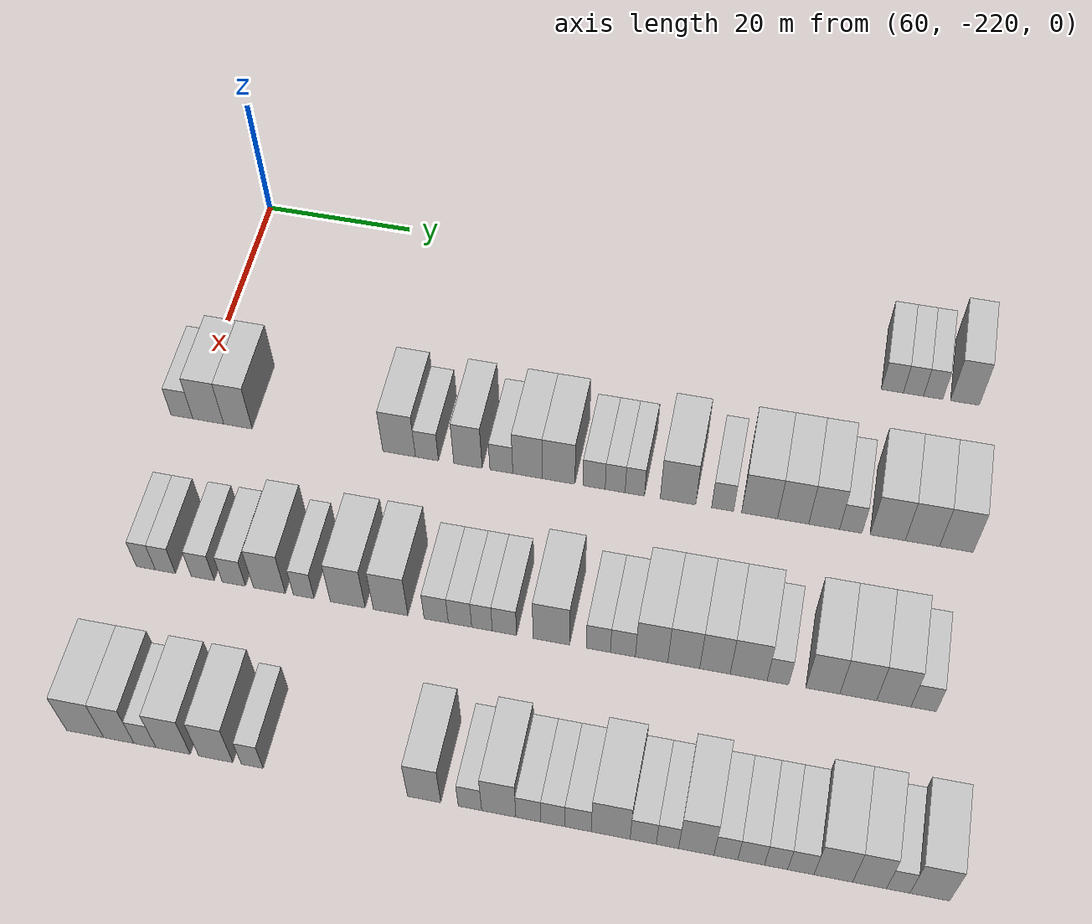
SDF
<sdf version="1.6">
 <world name="default">
  <model name="building_425">
   <static>1</static>
   <pose>69.0000 -131.8547 0 0.000000 0.000000 0.000000</pose>
   <link name="link">
    <pose>0 0 3.00 0 0 0</pose>
    <collision name="collision"><geometry><box><size>10.0000 2.8605 6.0000</size></box></geometry></collision>
    <visual name="visual">
     <cast_shadows>0</cast_shadows>
     <geometry><box><size>10.0000 2.8605 6.0000</size></box></geometry>
     <material>
      <script>
       <uri>model://HANNAS_wall/materials/scripts</uri>
       <uri>model://HANNAS_wall/materials/textures</uri>
       <name>vrc/HANNAS_wall</name>
      </script>
     </material>
    </visual>
   </link>
  </model>
  <model name="building_426">
   <static>1</static>
   <pose>69.0000 -129.1215 0 0.000000 0.000000 0.000000</pose>
   <link name="link">
    <pose>0 0 3.00 0 0 0</pose>
    <collision name="collision"><geometry><box><size>10.0000 2.6061 6.0000</size></box></geometry></collision>
    <visual name="visual">
     <cast_shadows>0</cast_shadows>
     <geometry><box><size>10.0000 2.6061 6.0000</size></box></geometry>
     <material>
      <script>
       <uri>model://HANNAS_wall/materials/scripts</uri>
       <uri>model://HANNAS_wall/materials/textures</uri>
       <name>vrc/HANNAS_wall</name>
      </script>
     </material>
    </visual>
   </link>
  </model>
  <model name="building_427">
   <static>1</static>
   <pose>69.0000 -126.5702 0 0.000000 0.000000 0.000000</pose>
   <link name="link">
    <pose>0 0 3.00 0 0 0</pose>
    <collision name="collision"><geometry><box><size>10.0000 2.4964 6.0000</size></box></geometry></collision>
    <visual name="visual">
     <cast_shadows>0</cast_shadows>
     <geometry><box><size>10.0000 2.4964 6.0000</size></box></geometry>
     <material>
      <script>
       <uri>model://HANNAS_wall/materials/scripts</uri>
       <uri>model://HANNAS_wall/materials/textures</uri>
       <name>vrc/HANNAS_wall</name>
      </script>
     </material>
    </visual>
   </link>
  </model>
  <model name="building_428">
   <static>1</static>
   <pose>69.0000 -122.4739 0 0.000000 0.000000 0.000000</pose>
   <link name="link">
    <pose>0 0 4.50 0 0 0</pose>
    <collision name="collision"><geometry><box><size>10.0000 3.6962 9.0000</size></box></geometry></collision>
    <visual name="visual">
     <cast_shadows>0</cast_shadows>
     <geometry><box><size>10.0000 3.6962 9.0000</size></box></geometry>
     <material>
      <script>
       <uri>model://HANNAS_wall/materials/scripts</uri>
       <uri>model://HANNAS_wall/materials/textures</uri>
       <name>vrc/HANNAS_wall</name>
      </script>
     </material>
    </visual>
   </link>
  </model>
  <model name="building_575">
   <static>1</static>
   <pose>91.0000 -221.1207 0 0.000000 0.000000 0.000000</pose>
   <link name="link">
    <pose>0 0 3.00 0 0 0</pose>
    <collision name="collision"><geometry><box><size>10.0000 2.9358 6.0000</size></box></geometry></collision>
    <visual name="visual">
     <cast_shadows>0</cast_shadows>
     <geometry><box><size>10.0000 2.9358 6.0000</size></box></geometry>
     <material>
      <script>
       <uri>model://HANNAS_wall/materials/scripts</uri>
       <uri>model://HANNAS_wall/materials/textures</uri>
       <name>vrc/HANNAS_wall</name>
      </script>
     </material>
    </visual>
   </link>
  </model>
  <model name="building_576">
   <static>1</static>
   <pose>91.0000 -217.5856 0 0.000000 0.000000 0.000000</pose>
   <link name="link">
    <pose>0 0 4.50 0 0 0</pose>
    <collision name="collision"><geometry><box><size>10.0000 4.1344 9.0000</size></box></geometry></collision>
    <visual name="visual">
     <cast_shadows>0</cast_shadows>
     <geometry><box><size>10.0000 4.1344 9.0000</size></box></geometry>
     <material>
      <script>
       <uri>model://HANNAS_wall/materials/scripts</uri>
       <uri>model://HANNAS_wall/materials/textures</uri>
       <name>vrc/HANNAS_wall</name>
      </script>
     </material>
    </visual>
   </link>
  </model>
  <model name="building_577">
   <static>1</static>
   <pose>91.0000 -213.6196 0 0.000000 0.000000 0.000000</pose>
   <link name="link">
    <pose>0 0 4.50 0 0 0</pose>
    <collision name="collision"><geometry><box><size>10.0000 3.7977 9.0000</size></box></geometry></collision>
    <visual name="visual">
     <cast_shadows>0</cast_shadows>
     <geometry><box><size>10.0000 3.7977 9.0000</size></box></geometry>
     <material>
      <script>
       <uri>model://HANNAS_wall/materials/scripts</uri>
       <uri>model://HANNAS_wall/materials/textures</uri>
       <name>vrc/HANNAS_wall</name>
      </script>
     </material>
    </visual>
   </link>
  </model>
  <model name="building_578">
   <static>1</static>
   <pose>91.0000 -192.3219 0 0.000000 0.000000 0.000000</pose>
   <link name="link">
    <pose>0 0 4.50 0 0 0</pose>
    <collision name="collision"><geometry><box><size>10.0000 4.2659 9.0000</size></box></geometry></collision>
    <visual name="visual">
     <cast_shadows>0</cast_shadows>
     <geometry><box><size>10.0000 4.2659 9.0000</size></box></geometry>
     <material>
      <script>
       <uri>model://HANNAS_wall/materials/scripts</uri>
       <uri>model://HANNAS_wall/materials/textures</uri>
       <name>vrc/HANNAS_wall</name>
      </script>
     </material>
    </visual>
   </link>
  </model>
  <model name="building_579">
   <static>1</static>
   <pose>91.0000 -188.6938 0 0.000000 0.000000 0.000000</pose>
   <link name="link">
    <pose>0 0 3.00 0 0 0</pose>
    <collision name="collision"><geometry><box><size>10.0000 2.9902 6.0000</size></box></geometry></collision>
    <visual name="visual">
     <cast_shadows>0</cast_shadows>
     <geometry><box><size>10.0000 2.9902 6.0000</size></box></geometry>
     <material>
      <script>
       <uri>model://HANNAS_wall/materials/scripts</uri>
       <uri>model://HANNAS_wall/materials/textures</uri>
       <name>vrc/HANNAS_wall</name>
      </script>
     </material>
    </visual>
   </link>
  </model>
  <model name="building_580">
   <static>1</static>
   <pose>91.0000 -183.3639 0 0.000000 0.000000 0.000000</pose>
   <link name="link">
    <pose>0 0 4.50 0 0 0</pose>
    <collision name="collision"><geometry><box><size>10.0000 3.6697 9.0000</size></box></geometry></collision>
    <visual name="visual">
     <cast_shadows>0</cast_shadows>
     <geometry><box><size>10.0000 3.6697 9.0000</size></box></geometry>
     <material>
      <script>
       <uri>model://HANNAS_wall/materials/scripts</uri>
       <uri>model://HANNAS_wall/materials/textures</uri>
       <name>vrc/HANNAS_wall</name>
      </script>
     </material>
    </visual>
   </link>
  </model>
  <model name="building_581">
   <static>1</static>
   <pose>91.0000 -179.0509 0 0.000000 0.000000 0.000000</pose>
   <link name="link">
    <pose>0 0 3.00 0 0 0</pose>
    <collision name="collision"><geometry><box><size>10.0000 2.9563 6.0000</size></box></geometry></collision>
    <visual name="visual">
     <cast_shadows>0</cast_shadows>
     <geometry><box><size>10.0000 2.9563 6.0000</size></box></geometry>
     <material>
      <script>
       <uri>model://HANNAS_wall/materials/scripts</uri>
       <uri>model://HANNAS_wall/materials/textures</uri>
       <name>vrc/HANNAS_wall</name>
      </script>
     </material>
    </visual>
   </link>
  </model>
  <model name="building_582">
   <static>1</static>
   <pose>91.0000 -175.6650 0 0.000000 0.000000 0.000000</pose>
   <link name="link">
    <pose>0 0 4.50 0 0 0</pose>
    <collision name="collision"><geometry><box><size>10.0000 3.8155 9.0000</size></box></geometry></collision>
    <visual name="visual">
     <cast_shadows>0</cast_shadows>
     <geometry><box><size>10.0000 3.8155 9.0000</size></box></geometry>
     <material>
      <script>
       <uri>model://HANNAS_wall/materials/scripts</uri>
       <uri>model://HANNAS_wall/materials/textures</uri>
       <name>vrc/HANNAS_wall</name>
      </script>
     </material>
    </visual>
   </link>
  </model>
  <model name="building_583">
   <static>1</static>
   <pose>91.0000 -171.6779 0 0.000000 0.000000 0.000000</pose>
   <link name="link">
    <pose>0 0 4.50 0 0 0</pose>
    <collision name="collision"><geometry><box><size>10.0000 4.1586 9.0000</size></box></geometry></collision>
    <visual name="visual">
     <cast_shadows>0</cast_shadows>
     <geometry><box><size>10.0000 4.1586 9.0000</size></box></geometry>
     <material>
      <script>
       <uri>model://HANNAS_wall/materials/scripts</uri>
       <uri>model://HANNAS_wall/materials/textures</uri>
       <name>vrc/HANNAS_wall</name>
      </script>
     </material>
    </visual>
   </link>
  </model>
  <model name="building_584">
   <static>1</static>
   <pose>91.0000 -167.1726 0 0.000000 0.000000 0.000000</pose>
   <link name="link">
    <pose>0 0 3.00 0 0 0</pose>
    <collision name="collision"><geometry><box><size>10.0000 2.8520 6.0000</size></box></geometry></collision>
    <visual name="visual">
     <cast_shadows>0</cast_shadows>
     <geometry><box><size>10.0000 2.8520 6.0000</size></box></geometry>
     <material>
      <script>
       <uri>model://HANNAS_wall/materials/scripts</uri>
       <uri>model://HANNAS_wall/materials/textures</uri>
       <name>vrc/HANNAS_wall</name>
      </script>
     </material>
    </visual>
   </link>
  </model>
  <model name="building_585">
   <static>1</static>
   <pose>91.0000 -164.4778 0 0.000000 0.000000 0.000000</pose>
   <link name="link">
    <pose>0 0 3.00 0 0 0</pose>
    <collision name="collision"><geometry><box><size>10.0000 2.5376 6.0000</size></box></geometry></collision>
    <visual name="visual">
     <cast_shadows>0</cast_shadows>
     <geometry><box><size>10.0000 2.5376 6.0000</size></box></geometry>
     <material>
      <script>
       <uri>model://HANNAS_wall/materials/scripts</uri>
       <uri>model://HANNAS_wall/materials/textures</uri>
       <name>vrc/HANNAS_wall</name>
      </script>
     </material>
    </visual>
   </link>
  </model>
  <model name="building_586">
   <static>1</static>
   <pose>91.0000 -161.9847 0 0.000000 0.000000 0.000000</pose>
   <link name="link">
    <pose>0 0 3.00 0 0 0</pose>
    <collision name="collision"><geometry><box><size>10.0000 2.4485 6.0000</size></box></geometry></collision>
    <visual name="visual">
     <cast_shadows>0</cast_shadows>
     <geometry><box><size>10.0000 2.4485 6.0000</size></box></geometry>
     <material>
      <script>
       <uri>model://HANNAS_wall/materials/scripts</uri>
       <uri>model://HANNAS_wall/materials/textures</uri>
       <name>vrc/HANNAS_wall</name>
      </script>
     </material>
    </visual>
   </link>
  </model>
  <model name="building_587">
   <static>1</static>
   <pose>91.0000 -156.5243 0 0.000000 0.000000 0.000000</pose>
   <link name="link">
    <pose>0 0 4.50 0 0 0</pose>
    <collision name="collision"><geometry><box><size>10.0000 4.4723 9.0000</size></box></geometry></collision>
    <visual name="visual">
     <cast_shadows>0</cast_shadows>
     <geometry><box><size>10.0000 4.4723 9.0000</size></box></geometry>
     <material>
      <script>
       <uri>model://HANNAS_wall/materials/scripts</uri>
       <uri>model://HANNAS_wall/materials/textures</uri>
       <name>vrc/HANNAS_wall</name>
      </script>
     </material>
    </visual>
   </link>
  </model>
  <model name="building_588">
   <static>1</static>
   <pose>91.0000 -150.9050 0 0.000000 0.000000 0.000000</pose>
   <link name="link">
    <pose>0 0 3.00 0 0 0</pose>
    <collision name="collision"><geometry><box><size>10.0000 2.7664 6.0000</size></box></geometry></collision>
    <visual name="visual">
     <cast_shadows>0</cast_shadows>
     <geometry><box><size>10.0000 2.7664 6.0000</size></box></geometry>
     <material>
      <script>
       <uri>model://HANNAS_wall/materials/scripts</uri>
       <uri>model://HANNAS_wall/materials/textures</uri>
       <name>vrc/HANNAS_wall</name>
      </script>
     </material>
    </visual>
   </link>
  </model>
  <model name="building_589">
   <static>1</static>
   <pose>91.0000 -146.2788 0 0.000000 0.000000 0.000000</pose>
   <link name="link">
    <pose>0 0 4.50 0 0 0</pose>
    <collision name="collision"><geometry><box><size>10.0000 4.4859 9.0000</size></box></geometry></collision>
    <visual name="visual">
     <cast_shadows>0</cast_shadows>
     <geometry><box><size>10.0000 4.4859 9.0000</size></box></geometry>
     <material>
      <script>
       <uri>model://HANNAS_wall/materials/scripts</uri>
       <uri>model://HANNAS_wall/materials/textures</uri>
       <name>vrc/HANNAS_wall</name>
      </script>
     </material>
    </visual>
   </link>
  </model>
  <model name="building_590">
   <static>1</static>
   <pose>91.0000 -142.0979 0 0.000000 0.000000 0.000000</pose>
   <link name="link">
    <pose>0 0 4.50 0 0 0</pose>
    <collision name="collision"><geometry><box><size>10.0000 3.8760 9.0000</size></box></geometry></collision>
    <visual name="visual">
     <cast_shadows>0</cast_shadows>
     <geometry><box><size>10.0000 3.8760 9.0000</size></box></geometry>
     <material>
      <script>
       <uri>model://HANNAS_wall/materials/scripts</uri>
       <uri>model://HANNAS_wall/materials/textures</uri>
       <name>vrc/HANNAS_wall</name>
      </script>
     </material>
    </visual>
   </link>
  </model>
  <model name="building_591">
   <static>1</static>
   <pose>91.0000 -138.2458 0 0.000000 0.000000 0.000000</pose>
   <link name="link">
    <pose>0 0 4.50 0 0 0</pose>
    <collision name="collision"><geometry><box><size>10.0000 3.8281 9.0000</size></box></geometry></collision>
    <visual name="visual">
     <cast_shadows>0</cast_shadows>
     <geometry><box><size>10.0000 3.8281 9.0000</size></box></geometry>
     <material>
      <script>
       <uri>model://HANNAS_wall/materials/scripts</uri>
       <uri>model://HANNAS_wall/materials/textures</uri>
       <name>vrc/HANNAS_wall</name>
      </script>
     </material>
    </visual>
   </link>
  </model>
  <model name="building_592">
   <static>1</static>
   <pose>91.0000 -134.9495 0 0.000000 0.000000 0.000000</pose>
   <link name="link">
    <pose>0 0 3.00 0 0 0</pose>
    <collision name="collision"><geometry><box><size>10.0000 2.7645 6.0000</size></box></geometry></collision>
    <visual name="visual">
     <cast_shadows>0</cast_shadows>
     <geometry><box><size>10.0000 2.7645 6.0000</size></box></geometry>
     <material>
      <script>
       <uri>model://HANNAS_wall/materials/scripts</uri>
       <uri>model://HANNAS_wall/materials/textures</uri>
       <name>vrc/HANNAS_wall</name>
      </script>
     </material>
    </visual>
   </link>
  </model>
  <model name="building_593">
   <static>1</static>
   <pose>91.0000 -130.4057 0 0.000000 0.000000 0.000000</pose>
   <link name="link">
    <pose>0 0 4.50 0 0 0</pose>
    <collision name="collision"><geometry><box><size>10.0000 4.3231 9.0000</size></box></geometry></collision>
    <visual name="visual">
     <cast_shadows>0</cast_shadows>
     <geometry><box><size>10.0000 4.3231 9.0000</size></box></geometry>
     <material>
      <script>
       <uri>model://HANNAS_wall/materials/scripts</uri>
       <uri>model://HANNAS_wall/materials/textures</uri>
       <name>vrc/HANNAS_wall</name>
      </script>
     </material>
    </visual>
   </link>
  </model>
  <model name="building_594">
   <static>1</static>
   <pose>91.0000 -126.1504 0 0.000000 0.000000 0.000000</pose>
   <link name="link">
    <pose>0 0 4.50 0 0 0</pose>
    <collision name="collision"><geometry><box><size>10.0000 4.1875 9.0000</size></box></geometry></collision>
    <visual name="visual">
     <cast_shadows>0</cast_shadows>
     <geometry><box><size>10.0000 4.1875 9.0000</size></box></geometry>
     <material>
      <script>
       <uri>model://HANNAS_wall/materials/scripts</uri>
       <uri>model://HANNAS_wall/materials/textures</uri>
       <name>vrc/HANNAS_wall</name>
      </script>
     </material>
    </visual>
   </link>
  </model>
  <model name="building_595">
   <static>1</static>
   <pose>91.0000 -121.9994 0 0.000000 0.000000 0.000000</pose>
   <link name="link">
    <pose>0 0 4.50 0 0 0</pose>
    <collision name="collision"><geometry><box><size>10.0000 4.1145 9.0000</size></box></geometry></collision>
    <visual name="visual">
     <cast_shadows>0</cast_shadows>
     <geometry><box><size>10.0000 4.1145 9.0000</size></box></geometry>
     <material>
      <script>
       <uri>model://HANNAS_wall/materials/scripts</uri>
       <uri>model://HANNAS_wall/materials/textures</uri>
       <name>vrc/HANNAS_wall</name>
      </script>
     </material>
    </visual>
   </link>
  </model>
  <model name="building_766">
   <static>1</static>
   <pose>113.0000 -218.4932 0 0.000000 0.000000 0.000000</pose>
   <link name="link">
    <pose>0 0 3.00 0 0 0</pose>
    <collision name="collision"><geometry><box><size>10.0000 2.4135 6.0000</size></box></geometry></collision>
    <visual name="visual">
     <cast_shadows>0</cast_shadows>
     <geometry><box><size>10.0000 2.4135 6.0000</size></box></geometry>
     <material>
      <script>
       <uri>model://HANNAS_wall/materials/scripts</uri>
       <uri>model://HANNAS_wall/materials/textures</uri>
       <name>vrc/HANNAS_wall</name>
      </script>
     </material>
    </visual>
   </link>
  </model>
  <model name="building_767">
   <static>1</static>
   <pose>113.0000 -215.9985 0 0.000000 0.000000 0.000000</pose>
   <link name="link">
    <pose>0 0 3.00 0 0 0</pose>
    <collision name="collision"><geometry><box><size>10.0000 2.5760 6.0000</size></box></geometry></collision>
    <visual name="visual">
     <cast_shadows>0</cast_shadows>
     <geometry><box><size>10.0000 2.5760 6.0000</size></box></geometry>
     <material>
      <script>
       <uri>model://HANNAS_wall/materials/scripts</uri>
       <uri>model://HANNAS_wall/materials/textures</uri>
       <name>vrc/HANNAS_wall</name>
      </script>
     </material>
    </visual>
   </link>
  </model>
  <model name="building_768">
   <static>1</static>
   <pose>113.0000 -211.2562 0 0.000000 0.000000 0.000000</pose>
   <link name="link">
    <pose>0 0 3.00 0 0 0</pose>
    <collision name="collision"><geometry><box><size>10.0000 2.9084 6.0000</size></box></geometry></collision>
    <visual name="visual">
     <cast_shadows>0</cast_shadows>
     <geometry><box><size>10.0000 2.9084 6.0000</size></box></geometry>
     <material>
      <script>
       <uri>model://HANNAS_wall/materials/scripts</uri>
       <uri>model://HANNAS_wall/materials/textures</uri>
       <name>vrc/HANNAS_wall</name>
      </script>
     </material>
    </visual>
   </link>
  </model>
  <model name="building_769">
   <static>1</static>
   <pose>113.0000 -207.3331 0 0.000000 0.000000 0.000000</pose>
   <link name="link">
    <pose>0 0 3.00 0 0 0</pose>
    <collision name="collision"><geometry><box><size>10.0000 2.9378 6.0000</size></box></geometry></collision>
    <visual name="visual">
     <cast_shadows>0</cast_shadows>
     <geometry><box><size>10.0000 2.9378 6.0000</size></box></geometry>
     <material>
      <script>
       <uri>model://HANNAS_wall/materials/scripts</uri>
       <uri>model://HANNAS_wall/materials/textures</uri>
       <name>vrc/HANNAS_wall</name>
      </script>
     </material>
    </visual>
   </link>
  </model>
  <model name="building_770">
   <static>1</static>
   <pose>113.0000 -202.8672 0 0.000000 0.000000 0.000000</pose>
   <link name="link">
    <pose>0 0 4.50 0 0 0</pose>
    <collision name="collision"><geometry><box><size>10.0000 3.9941 9.0000</size></box></geometry></collision>
    <visual name="visual">
     <cast_shadows>0</cast_shadows>
     <geometry><box><size>10.0000 3.9941 9.0000</size></box></geometry>
     <material>
      <script>
       <uri>model://HANNAS_wall/materials/scripts</uri>
       <uri>model://HANNAS_wall/materials/textures</uri>
       <name>vrc/HANNAS_wall</name>
      </script>
     </material>
    </visual>
   </link>
  </model>
  <model name="building_771">
   <static>1</static>
   <pose>113.0000 -198.5720 0 0.000000 0.000000 0.000000</pose>
   <link name="link">
    <pose>0 0 3.00 0 0 0</pose>
    <collision name="collision"><geometry><box><size>10.0000 2.5962 6.0000</size></box></geometry></collision>
    <visual name="visual">
     <cast_shadows>0</cast_shadows>
     <geometry><box><size>10.0000 2.5962 6.0000</size></box></geometry>
     <material>
      <script>
       <uri>model://HANNAS_wall/materials/scripts</uri>
       <uri>model://HANNAS_wall/materials/textures</uri>
       <name>vrc/HANNAS_wall</name>
      </script>
     </material>
    </visual>
   </link>
  </model>
  <model name="building_772">
   <static>1</static>
   <pose>113.0000 -193.1028 0 0.000000 0.000000 0.000000</pose>
   <link name="link">
    <pose>0 0 4.50 0 0 0</pose>
    <collision name="collision"><geometry><box><size>10.0000 4.3423 9.0000</size></box></geometry></collision>
    <visual name="visual">
     <cast_shadows>0</cast_shadows>
     <geometry><box><size>10.0000 4.3423 9.0000</size></box></geometry>
     <material>
      <script>
       <uri>model://HANNAS_wall/materials/scripts</uri>
       <uri>model://HANNAS_wall/materials/textures</uri>
       <name>vrc/HANNAS_wall</name>
      </script>
     </material>
    </visual>
   </link>
  </model>
  <model name="building_773">
   <static>1</static>
   <pose>113.0000 -187.7969 0 0.000000 0.000000 0.000000</pose>
   <link name="link">
    <pose>0 0 4.50 0 0 0</pose>
    <collision name="collision"><geometry><box><size>10.0000 4.2694 9.0000</size></box></geometry></collision>
    <visual name="visual">
     <cast_shadows>0</cast_shadows>
     <geometry><box><size>10.0000 4.2694 9.0000</size></box></geometry>
     <material>
      <script>
       <uri>model://HANNAS_wall/materials/scripts</uri>
       <uri>model://HANNAS_wall/materials/textures</uri>
       <name>vrc/HANNAS_wall</name>
      </script>
     </material>
    </visual>
   </link>
  </model>
  <model name="building_774">
   <static>1</static>
   <pose>113.0000 -182.1802 0 0.000000 0.000000 0.000000</pose>
   <link name="link">
    <pose>0 0 3.00 0 0 0</pose>
    <collision name="collision"><geometry><box><size>10.0000 2.9641 6.0000</size></box></geometry></collision>
    <visual name="visual">
     <cast_shadows>0</cast_shadows>
     <geometry><box><size>10.0000 2.9641 6.0000</size></box></geometry>
     <material>
      <script>
       <uri>model://HANNAS_wall/materials/scripts</uri>
       <uri>model://HANNAS_wall/materials/textures</uri>
       <name>vrc/HANNAS_wall</name>
      </script>
     </material>
    </visual>
   </link>
  </model>
  <model name="building_775">
   <static>1</static>
   <pose>113.0000 -179.2660 0 0.000000 0.000000 0.000000</pose>
   <link name="link">
    <pose>0 0 3.00 0 0 0</pose>
    <collision name="collision"><geometry><box><size>10.0000 2.8644 6.0000</size></box></geometry></collision>
    <visual name="visual">
     <cast_shadows>0</cast_shadows>
     <geometry><box><size>10.0000 2.8644 6.0000</size></box></geometry>
     <material>
      <script>
       <uri>model://HANNAS_wall/materials/scripts</uri>
       <uri>model://HANNAS_wall/materials/textures</uri>
       <name>vrc/HANNAS_wall</name>
      </script>
     </material>
    </visual>
   </link>
  </model>
  <model name="building_776">
   <static>1</static>
   <pose>113.0000 -176.5785 0 0.000000 0.000000 0.000000</pose>
   <link name="link">
    <pose>0 0 3.00 0 0 0</pose>
    <collision name="collision"><geometry><box><size>10.0000 2.5106 6.0000</size></box></geometry></collision>
    <visual name="visual">
     <cast_shadows>0</cast_shadows>
     <geometry><box><size>10.0000 2.5106 6.0000</size></box></geometry>
     <material>
      <script>
       <uri>model://HANNAS_wall/materials/scripts</uri>
       <uri>model://HANNAS_wall/materials/textures</uri>
       <name>vrc/HANNAS_wall</name>
      </script>
     </material>
    </visual>
   </link>
  </model>
  <model name="building_777">
   <static>1</static>
   <pose>113.0000 -173.8455 0 0.000000 0.000000 0.000000</pose>
   <link name="link">
    <pose>0 0 3.00 0 0 0</pose>
    <collision name="collision"><geometry><box><size>10.0000 2.9554 6.0000</size></box></geometry></collision>
    <visual name="visual">
     <cast_shadows>0</cast_shadows>
     <geometry><box><size>10.0000 2.9554 6.0000</size></box></geometry>
     <material>
      <script>
       <uri>model://HANNAS_wall/materials/scripts</uri>
       <uri>model://HANNAS_wall/materials/textures</uri>
       <name>vrc/HANNAS_wall</name>
      </script>
     </material>
    </visual>
   </link>
  </model>
  <model name="building_778">
   <static>1</static>
   <pose>113.0000 -168.1601 0 0.000000 0.000000 0.000000</pose>
   <link name="link">
    <pose>0 0 4.50 0 0 0</pose>
    <collision name="collision"><geometry><box><size>10.0000 4.4155 9.0000</size></box></geometry></collision>
    <visual name="visual">
     <cast_shadows>0</cast_shadows>
     <geometry><box><size>10.0000 4.4155 9.0000</size></box></geometry>
     <material>
      <script>
       <uri>model://HANNAS_wall/materials/scripts</uri>
       <uri>model://HANNAS_wall/materials/textures</uri>
       <name>vrc/HANNAS_wall</name>
      </script>
     </material>
    </visual>
   </link>
  </model>
  <model name="building_779">
   <static>1</static>
   <pose>113.0000 -162.5062 0 0.000000 0.000000 0.000000</pose>
   <link name="link">
    <pose>0 0 3.00 0 0 0</pose>
    <collision name="collision"><geometry><box><size>10.0000 2.8923 6.0000</size></box></geometry></collision>
    <visual name="visual">
     <cast_shadows>0</cast_shadows>
     <geometry><box><size>10.0000 2.8923 6.0000</size></box></geometry>
     <material>
      <script>
       <uri>model://HANNAS_wall/materials/scripts</uri>
       <uri>model://HANNAS_wall/materials/textures</uri>
       <name>vrc/HANNAS_wall</name>
      </script>
     </material>
    </visual>
   </link>
  </model>
  <model name="building_780">
   <static>1</static>
   <pose>113.0000 -159.5609 0 0.000000 0.000000 0.000000</pose>
   <link name="link">
    <pose>0 0 3.00 0 0 0</pose>
    <collision name="collision"><geometry><box><size>10.0000 2.9983 6.0000</size></box></geometry></collision>
    <visual name="visual">
     <cast_shadows>0</cast_shadows>
     <geometry><box><size>10.0000 2.9983 6.0000</size></box></geometry>
     <material>
      <script>
       <uri>model://HANNAS_wall/materials/scripts</uri>
       <uri>model://HANNAS_wall/materials/textures</uri>
       <name>vrc/HANNAS_wall</name>
      </script>
     </material>
    </visual>
   </link>
  </model>
  <model name="building_781">
   <static>1</static>
   <pose>113.0000 -156.1275 0 0.000000 0.000000 0.000000</pose>
   <link name="link">
    <pose>0 0 4.50 0 0 0</pose>
    <collision name="collision"><geometry><box><size>10.0000 3.8685 9.0000</size></box></geometry></collision>
    <visual name="visual">
     <cast_shadows>0</cast_shadows>
     <geometry><box><size>10.0000 3.8685 9.0000</size></box></geometry>
     <material>
      <script>
       <uri>model://HANNAS_wall/materials/scripts</uri>
       <uri>model://HANNAS_wall/materials/textures</uri>
       <name>vrc/HANNAS_wall</name>
      </script>
     </material>
    </visual>
   </link>
  </model>
  <model name="building_782">
   <static>1</static>
   <pose>113.0000 -152.2974 0 0.000000 0.000000 0.000000</pose>
   <link name="link">
    <pose>0 0 4.50 0 0 0</pose>
    <collision name="collision"><geometry><box><size>10.0000 3.7917 9.0000</size></box></geometry></collision>
    <visual name="visual">
     <cast_shadows>0</cast_shadows>
     <geometry><box><size>10.0000 3.7917 9.0000</size></box></geometry>
     <material>
      <script>
       <uri>model://HANNAS_wall/materials/scripts</uri>
       <uri>model://HANNAS_wall/materials/textures</uri>
       <name>vrc/HANNAS_wall</name>
      </script>
     </material>
    </visual>
   </link>
  </model>
  <model name="building_783">
   <static>1</static>
   <pose>113.0000 -148.5927 0 0.000000 0.000000 0.000000</pose>
   <link name="link">
    <pose>0 0 4.50 0 0 0</pose>
    <collision name="collision"><geometry><box><size>10.0000 3.6175 9.0000</size></box></geometry></collision>
    <visual name="visual">
     <cast_shadows>0</cast_shadows>
     <geometry><box><size>10.0000 3.6175 9.0000</size></box></geometry>
     <material>
      <script>
       <uri>model://HANNAS_wall/materials/scripts</uri>
       <uri>model://HANNAS_wall/materials/textures</uri>
       <name>vrc/HANNAS_wall</name>
      </script>
     </material>
    </visual>
   </link>
  </model>
  <model name="building_784">
   <static>1</static>
   <pose>113.0000 -144.6128 0 0.000000 0.000000 0.000000</pose>
   <link name="link">
    <pose>0 0 4.50 0 0 0</pose>
    <collision name="collision"><geometry><box><size>10.0000 4.3423 9.0000</size></box></geometry></collision>
    <visual name="visual">
     <cast_shadows>0</cast_shadows>
     <geometry><box><size>10.0000 4.3423 9.0000</size></box></geometry>
     <material>
      <script>
       <uri>model://HANNAS_wall/materials/scripts</uri>
       <uri>model://HANNAS_wall/materials/textures</uri>
       <name>vrc/HANNAS_wall</name>
      </script>
     </material>
    </visual>
   </link>
  </model>
  <model name="building_785">
   <static>1</static>
   <pose>113.0000 -141.1648 0 0.000000 0.000000 0.000000</pose>
   <link name="link">
    <pose>0 0 3.00 0 0 0</pose>
    <collision name="collision"><geometry><box><size>10.0000 2.5536 6.0000</size></box></geometry></collision>
    <visual name="visual">
     <cast_shadows>0</cast_shadows>
     <geometry><box><size>10.0000 2.5536 6.0000</size></box></geometry>
     <material>
      <script>
       <uri>model://HANNAS_wall/materials/scripts</uri>
       <uri>model://HANNAS_wall/materials/textures</uri>
       <name>vrc/HANNAS_wall</name>
      </script>
     </material>
    </visual>
   </link>
  </model>
  <model name="building_786">
   <static>1</static>
   <pose>113.0000 -135.8996 0 0.000000 0.000000 0.000000</pose>
   <link name="link">
    <pose>0 0 4.50 0 0 0</pose>
    <collision name="collision"><geometry><box><size>10.0000 3.9769 9.0000</size></box></geometry></collision>
    <visual name="visual">
     <cast_shadows>0</cast_shadows>
     <geometry><box><size>10.0000 3.9769 9.0000</size></box></geometry>
     <material>
      <script>
       <uri>model://HANNAS_wall/materials/scripts</uri>
       <uri>model://HANNAS_wall/materials/textures</uri>
       <name>vrc/HANNAS_wall</name>
      </script>
     </material>
    </visual>
   </link>
  </model>
  <model name="building_787">
   <static>1</static>
   <pose>113.0000 -131.7745 0 0.000000 0.000000 0.000000</pose>
   <link name="link">
    <pose>0 0 4.50 0 0 0</pose>
    <collision name="collision"><geometry><box><size>10.0000 4.2732 9.0000</size></box></geometry></collision>
    <visual name="visual">
     <cast_shadows>0</cast_shadows>
     <geometry><box><size>10.0000 4.2732 9.0000</size></box></geometry>
     <material>
      <script>
       <uri>model://HANNAS_wall/materials/scripts</uri>
       <uri>model://HANNAS_wall/materials/textures</uri>
       <name>vrc/HANNAS_wall</name>
      </script>
     </material>
    </visual>
   </link>
  </model>
  <model name="building_788">
   <static>1</static>
   <pose>113.0000 -127.6471 0 0.000000 0.000000 0.000000</pose>
   <link name="link">
    <pose>0 0 4.50 0 0 0</pose>
    <collision name="collision"><geometry><box><size>10.0000 3.9816 9.0000</size></box></geometry></collision>
    <visual name="visual">
     <cast_shadows>0</cast_shadows>
     <geometry><box><size>10.0000 3.9816 9.0000</size></box></geometry>
     <material>
      <script>
       <uri>model://HANNAS_wall/materials/scripts</uri>
       <uri>model://HANNAS_wall/materials/textures</uri>
       <name>vrc/HANNAS_wall</name>
      </script>
     </material>
    </visual>
   </link>
  </model>
  <model name="building_789">
   <static>1</static>
   <pose>113.0000 -124.1896 0 0.000000 0.000000 0.000000</pose>
   <link name="link">
    <pose>0 0 3.00 0 0 0</pose>
    <collision name="collision"><geometry><box><size>10.0000 2.9334 6.0000</size></box></geometry></collision>
    <visual name="visual">
     <cast_shadows>0</cast_shadows>
     <geometry><box><size>10.0000 2.9334 6.0000</size></box></geometry>
     <material>
      <script>
       <uri>model://HANNAS_wall/materials/scripts</uri>
       <uri>model://HANNAS_wall/materials/textures</uri>
       <name>vrc/HANNAS_wall</name>
      </script>
     </material>
    </visual>
   </link>
  </model>
  <model name="building_954">
   <static>1</static>
   <pose>135.0000 -218.2794 0 0.000000 0.000000 0.000000</pose>
   <link name="link">
    <pose>0 0 4.50 0 0 0</pose>
    <collision name="collision"><geometry><box><size>10.0000 4.4870 9.0000</size></box></geometry></collision>
    <visual name="visual">
     <cast_shadows>0</cast_shadows>
     <geometry><box><size>10.0000 4.4870 9.0000</size></box></geometry>
     <material>
      <script>
       <uri>model://HANNAS_wall/materials/scripts</uri>
       <uri>model://HANNAS_wall/materials/textures</uri>
       <name>vrc/HANNAS_wall</name>
      </script>
     </material>
    </visual>
   </link>
  </model>
  <model name="building_955">
   <static>1</static>
   <pose>135.0000 -214.2226 0 0.000000 0.000000 0.000000</pose>
   <link name="link">
    <pose>0 0 4.50 0 0 0</pose>
    <collision name="collision"><geometry><box><size>10.0000 3.6266 9.0000</size></box></geometry></collision>
    <visual name="visual">
     <cast_shadows>0</cast_shadows>
     <geometry><box><size>10.0000 3.6266 9.0000</size></box></geometry>
     <material>
      <script>
       <uri>model://HANNAS_wall/materials/scripts</uri>
       <uri>model://HANNAS_wall/materials/textures</uri>
       <name>vrc/HANNAS_wall</name>
      </script>
     </material>
    </visual>
   </link>
  </model>
  <model name="building_956">
   <static>1</static>
   <pose>135.0000 -211.0942 0 0.000000 0.000000 0.000000</pose>
   <link name="link">
    <pose>0 0 3.00 0 0 0</pose>
    <collision name="collision"><geometry><box><size>10.0000 2.6301 6.0000</size></box></geometry></collision>
    <visual name="visual">
     <cast_shadows>0</cast_shadows>
     <geometry><box><size>10.0000 2.6301 6.0000</size></box></geometry>
     <material>
      <script>
       <uri>model://HANNAS_wall/materials/scripts</uri>
       <uri>model://HANNAS_wall/materials/textures</uri>
       <name>vrc/HANNAS_wall</name>
      </script>
     </material>
    </visual>
   </link>
  </model>
  <model name="building_957">
   <static>1</static>
   <pose>135.0000 -207.7301 0 0.000000 0.000000 0.000000</pose>
   <link name="link">
    <pose>0 0 4.50 0 0 0</pose>
    <collision name="collision"><geometry><box><size>10.0000 4.0982 9.0000</size></box></geometry></collision>
    <visual name="visual">
     <cast_shadows>0</cast_shadows>
     <geometry><box><size>10.0000 4.0982 9.0000</size></box></geometry>
     <material>
      <script>
       <uri>model://HANNAS_wall/materials/scripts</uri>
       <uri>model://HANNAS_wall/materials/textures</uri>
       <name>vrc/HANNAS_wall</name>
      </script>
     </material>
    </visual>
   </link>
  </model>
  <model name="building_958">
   <static>1</static>
   <pose>135.0000 -202.6548 0 0.000000 0.000000 0.000000</pose>
   <link name="link">
    <pose>0 0 4.50 0 0 0</pose>
    <collision name="collision"><geometry><box><size>10.0000 4.0524 9.0000</size></box></geometry></collision>
    <visual name="visual">
     <cast_shadows>0</cast_shadows>
     <geometry><box><size>10.0000 4.0524 9.0000</size></box></geometry>
     <material>
      <script>
       <uri>model://HANNAS_wall/materials/scripts</uri>
       <uri>model://HANNAS_wall/materials/textures</uri>
       <name>vrc/HANNAS_wall</name>
      </script>
     </material>
    </visual>
   </link>
  </model>
  <model name="building_959">
   <static>1</static>
   <pose>135.0000 -198.3369 0 0.000000 0.000000 0.000000</pose>
   <link name="link">
    <pose>0 0 3.00 0 0 0</pose>
    <collision name="collision"><geometry><box><size>10.0000 2.5835 6.0000</size></box></geometry></collision>
    <visual name="visual">
     <cast_shadows>0</cast_shadows>
     <geometry><box><size>10.0000 2.5835 6.0000</size></box></geometry>
     <material>
      <script>
       <uri>model://HANNAS_wall/materials/scripts</uri>
       <uri>model://HANNAS_wall/materials/textures</uri>
       <name>vrc/HANNAS_wall</name>
      </script>
     </material>
    </visual>
   </link>
  </model>
  <model name="building_960">
   <static>1</static>
   <pose>135.0000 -178.2648 0 0.000000 0.000000 0.000000</pose>
   <link name="link">
    <pose>0 0 4.50 0 0 0</pose>
    <collision name="collision"><geometry><box><size>10.0000 3.8536 9.0000</size></box></geometry></collision>
    <visual name="visual">
     <cast_shadows>0</cast_shadows>
     <geometry><box><size>10.0000 3.8536 9.0000</size></box></geometry>
     <material>
      <script>
       <uri>model://HANNAS_wall/materials/scripts</uri>
       <uri>model://HANNAS_wall/materials/textures</uri>
       <name>vrc/HANNAS_wall</name>
      </script>
     </material>
    </visual>
   </link>
  </model>
  <model name="building_961">
   <static>1</static>
   <pose>135.0000 -172.9955 0 0.000000 0.000000 0.000000</pose>
   <link name="link">
    <pose>0 0 3.00 0 0 0</pose>
    <collision name="collision"><geometry><box><size>10.0000 2.6850 6.0000</size></box></geometry></collision>
    <visual name="visual">
     <cast_shadows>0</cast_shadows>
     <geometry><box><size>10.0000 2.6850 6.0000</size></box></geometry>
     <material>
      <script>
       <uri>model://HANNAS_wall/materials/scripts</uri>
       <uri>model://HANNAS_wall/materials/textures</uri>
       <name>vrc/HANNAS_wall</name>
      </script>
     </material>
    </visual>
   </link>
  </model>
  <model name="building_962">
   <static>1</static>
   <pose>135.0000 -169.6976 0 0.000000 0.000000 0.000000</pose>
   <link name="link">
    <pose>0 0 4.50 0 0 0</pose>
    <collision name="collision"><geometry><box><size>10.0000 3.9108 9.0000</size></box></geometry></collision>
    <visual name="visual">
     <cast_shadows>0</cast_shadows>
     <geometry><box><size>10.0000 3.9108 9.0000</size></box></geometry>
     <material>
      <script>
       <uri>model://HANNAS_wall/materials/scripts</uri>
       <uri>model://HANNAS_wall/materials/textures</uri>
       <name>vrc/HANNAS_wall</name>
      </script>
     </material>
    </visual>
   </link>
  </model>
  <model name="building_963">
   <static>1</static>
   <pose>135.0000 -166.3198 0 0.000000 0.000000 0.000000</pose>
   <link name="link">
    <pose>0 0 3.00 0 0 0</pose>
    <collision name="collision"><geometry><box><size>10.0000 2.8448 6.0000</size></box></geometry></collision>
    <visual name="visual">
     <cast_shadows>0</cast_shadows>
     <geometry><box><size>10.0000 2.8448 6.0000</size></box></geometry>
     <material>
      <script>
       <uri>model://HANNAS_wall/materials/scripts</uri>
       <uri>model://HANNAS_wall/materials/textures</uri>
       <name>vrc/HANNAS_wall</name>
      </script>
     </material>
    </visual>
   </link>
  </model>
  <model name="building_964">
   <static>1</static>
   <pose>135.0000 -163.5475 0 0.000000 0.000000 0.000000</pose>
   <link name="link">
    <pose>0 0 3.00 0 0 0</pose>
    <collision name="collision"><geometry><box><size>10.0000 2.6998 6.0000</size></box></geometry></collision>
    <visual name="visual">
     <cast_shadows>0</cast_shadows>
     <geometry><box><size>10.0000 2.6998 6.0000</size></box></geometry>
     <material>
      <script>
       <uri>model://HANNAS_wall/materials/scripts</uri>
       <uri>model://HANNAS_wall/materials/textures</uri>
       <name>vrc/HANNAS_wall</name>
      </script>
     </material>
    </visual>
   </link>
  </model>
  <model name="building_965">
   <static>1</static>
   <pose>135.0000 -160.6987 0 0.000000 0.000000 0.000000</pose>
   <link name="link">
    <pose>0 0 3.00 0 0 0</pose>
    <collision name="collision"><geometry><box><size>10.0000 2.9980 6.0000</size></box></geometry></collision>
    <visual name="visual">
     <cast_shadows>0</cast_shadows>
     <geometry><box><size>10.0000 2.9980 6.0000</size></box></geometry>
     <material>
      <script>
       <uri>model://HANNAS_wall/materials/scripts</uri>
       <uri>model://HANNAS_wall/materials/textures</uri>
       <name>vrc/HANNAS_wall</name>
      </script>
     </material>
    </visual>
   </link>
  </model>
  <model name="building_966">
   <static>1</static>
   <pose>135.0000 -157.0046 0 0.000000 0.000000 0.000000</pose>
   <link name="link">
    <pose>0 0 4.50 0 0 0</pose>
    <collision name="collision"><geometry><box><size>10.0000 4.3902 9.0000</size></box></geometry></collision>
    <visual name="visual">
     <cast_shadows>0</cast_shadows>
     <geometry><box><size>10.0000 4.3902 9.0000</size></box></geometry>
     <material>
      <script>
       <uri>model://HANNAS_wall/materials/scripts</uri>
       <uri>model://HANNAS_wall/materials/textures</uri>
       <name>vrc/HANNAS_wall</name>
      </script>
     </material>
    </visual>
   </link>
  </model>
  <model name="building_967">
   <static>1</static>
   <pose>135.0000 -153.3405 0 0.000000 0.000000 0.000000</pose>
   <link name="link">
    <pose>0 0 3.00 0 0 0</pose>
    <collision name="collision"><geometry><box><size>10.0000 2.9381 6.0000</size></box></geometry></collision>
    <visual name="visual">
     <cast_shadows>0</cast_shadows>
     <geometry><box><size>10.0000 2.9381 6.0000</size></box></geometry>
     <material>
      <script>
       <uri>model://HANNAS_wall/materials/scripts</uri>
       <uri>model://HANNAS_wall/materials/textures</uri>
       <name>vrc/HANNAS_wall</name>
      </script>
     </material>
    </visual>
   </link>
  </model>
  <model name="building_968">
   <static>1</static>
   <pose>135.0000 -150.6183 0 0.000000 0.000000 0.000000</pose>
   <link name="link">
    <pose>0 0 3.00 0 0 0</pose>
    <collision name="collision"><geometry><box><size>10.0000 2.5063 6.0000</size></box></geometry></collision>
    <visual name="visual">
     <cast_shadows>0</cast_shadows>
     <geometry><box><size>10.0000 2.5063 6.0000</size></box></geometry>
     <material>
      <script>
       <uri>model://HANNAS_wall/materials/scripts</uri>
       <uri>model://HANNAS_wall/materials/textures</uri>
       <name>vrc/HANNAS_wall</name>
      </script>
     </material>
    </visual>
   </link>
  </model>
  <model name="building_969">
   <static>1</static>
   <pose>135.0000 -147.3966 0 0.000000 0.000000 0.000000</pose>
   <link name="link">
    <pose>0 0 4.50 0 0 0</pose>
    <collision name="collision"><geometry><box><size>10.0000 3.9371 9.0000</size></box></geometry></collision>
    <visual name="visual">
     <cast_shadows>0</cast_shadows>
     <geometry><box><size>10.0000 3.9371 9.0000</size></box></geometry>
     <material>
      <script>
       <uri>model://HANNAS_wall/materials/scripts</uri>
       <uri>model://HANNAS_wall/materials/textures</uri>
       <name>vrc/HANNAS_wall</name>
      </script>
     </material>
    </visual>
   </link>
  </model>
  <model name="building_970">
   <static>1</static>
   <pose>135.0000 -144.1128 0 0.000000 0.000000 0.000000</pose>
   <link name="link">
    <pose>0 0 3.00 0 0 0</pose>
    <collision name="collision"><geometry><box><size>10.0000 2.6304 6.0000</size></box></geometry></collision>
    <visual name="visual">
     <cast_shadows>0</cast_shadows>
     <geometry><box><size>10.0000 2.6304 6.0000</size></box></geometry>
     <material>
      <script>
       <uri>model://HANNAS_wall/materials/scripts</uri>
       <uri>model://HANNAS_wall/materials/textures</uri>
       <name>vrc/HANNAS_wall</name>
      </script>
     </material>
    </visual>
   </link>
  </model>
  <model name="building_971">
   <static>1</static>
   <pose>135.0000 -141.3099 0 0.000000 0.000000 0.000000</pose>
   <link name="link">
    <pose>0 0 3.00 0 0 0</pose>
    <collision name="collision"><geometry><box><size>10.0000 2.9755 6.0000</size></box></geometry></collision>
    <visual name="visual">
     <cast_shadows>0</cast_shadows>
     <geometry><box><size>10.0000 2.9755 6.0000</size></box></geometry>
     <material>
      <script>
       <uri>model://HANNAS_wall/materials/scripts</uri>
       <uri>model://HANNAS_wall/materials/textures</uri>
       <name>vrc/HANNAS_wall</name>
      </script>
     </material>
    </visual>
   </link>
  </model>
  <model name="building_972">
   <static>1</static>
   <pose>135.0000 -138.5402 0 0.000000 0.000000 0.000000</pose>
   <link name="link">
    <pose>0 0 3.00 0 0 0</pose>
    <collision name="collision"><geometry><box><size>10.0000 2.5638 6.0000</size></box></geometry></collision>
    <visual name="visual">
     <cast_shadows>0</cast_shadows>
     <geometry><box><size>10.0000 2.5638 6.0000</size></box></geometry>
     <material>
      <script>
       <uri>model://HANNAS_wall/materials/scripts</uri>
       <uri>model://HANNAS_wall/materials/textures</uri>
       <name>vrc/HANNAS_wall</name>
      </script>
     </material>
    </visual>
   </link>
  </model>
  <model name="building_973">
   <static>1</static>
   <pose>135.0000 -135.8068 0 0.000000 0.000000 0.000000</pose>
   <link name="link">
    <pose>0 0 3.00 0 0 0</pose>
    <collision name="collision"><geometry><box><size>10.0000 2.9029 6.0000</size></box></geometry></collision>
    <visual name="visual">
     <cast_shadows>0</cast_shadows>
     <geometry><box><size>10.0000 2.9029 6.0000</size></box></geometry>
     <material>
      <script>
       <uri>model://HANNAS_wall/materials/scripts</uri>
       <uri>model://HANNAS_wall/materials/textures</uri>
       <name>vrc/HANNAS_wall</name>
      </script>
     </material>
    </visual>
   </link>
  </model>
  <model name="building_974">
   <static>1</static>
   <pose>135.0000 -132.2354 0 0.000000 0.000000 0.000000</pose>
   <link name="link">
    <pose>0 0 4.50 0 0 0</pose>
    <collision name="collision"><geometry><box><size>10.0000 4.2399 9.0000</size></box></geometry></collision>
    <visual name="visual">
     <cast_shadows>0</cast_shadows>
     <geometry><box><size>10.0000 4.2399 9.0000</size></box></geometry>
     <material>
      <script>
       <uri>model://HANNAS_wall/materials/scripts</uri>
       <uri>model://HANNAS_wall/materials/textures</uri>
       <name>vrc/HANNAS_wall</name>
      </script>
     </material>
    </visual>
   </link>
  </model>
  <model name="building_975">
   <static>1</static>
   <pose>135.0000 -128.2661 0 0.000000 0.000000 0.000000</pose>
   <link name="link">
    <pose>0 0 4.50 0 0 0</pose>
    <collision name="collision"><geometry><box><size>10.0000 3.6988 9.0000</size></box></geometry></collision>
    <visual name="visual">
     <cast_shadows>0</cast_shadows>
     <geometry><box><size>10.0000 3.6988 9.0000</size></box></geometry>
     <material>
      <script>
       <uri>model://HANNAS_wall/materials/scripts</uri>
       <uri>model://HANNAS_wall/materials/textures</uri>
       <name>vrc/HANNAS_wall</name>
      </script>
     </material>
    </visual>
   </link>
  </model>
  <model name="building_976">
   <static>1</static>
   <pose>135.0000 -125.1445 0 0.000000 0.000000 0.000000</pose>
   <link name="link">
    <pose>0 0 3.00 0 0 0</pose>
    <collision name="collision"><geometry><box><size>10.0000 2.5443 6.0000</size></box></geometry></collision>
    <visual name="visual">
     <cast_shadows>0</cast_shadows>
     <geometry><box><size>10.0000 2.5443 6.0000</size></box></geometry>
     <material>
      <script>
       <uri>model://HANNAS_wall/materials/scripts</uri>
       <uri>model://HANNAS_wall/materials/textures</uri>
       <name>vrc/HANNAS_wall</name>
      </script>
     </material>
    </visual>
   </link>
  </model>
  <model name="building_977">
   <static>1</static>
   <pose>135.0000 -121.7138 0 0.000000 0.000000 0.000000</pose>
   <link name="link">
    <pose>0 0 4.50 0 0 0</pose>
    <collision name="collision"><geometry><box><size>10.0000 4.3172 9.0000</size></box></geometry></collision>
    <visual name="visual">
     <cast_shadows>0</cast_shadows>
     <geometry><box><size>10.0000 4.3172 9.0000</size></box></geometry>
     <material>
      <script>
       <uri>model://HANNAS_wall/materials/scripts</uri>
       <uri>model://HANNAS_wall/materials/textures</uri>
       <name>vrc/HANNAS_wall</name>
      </script>
     </material>
    </visual>
   </link>
  </model>
 </world>
</sdf>
